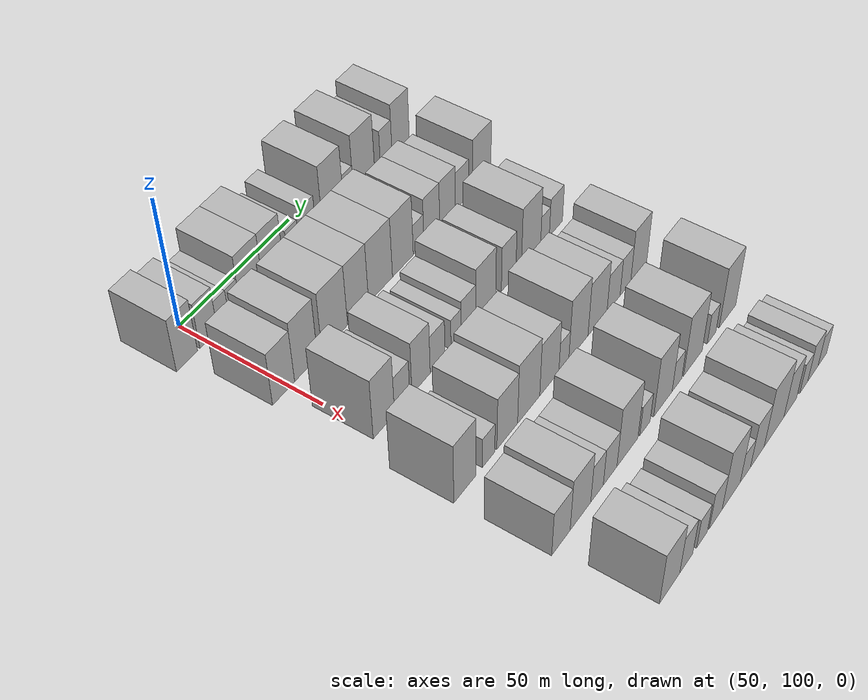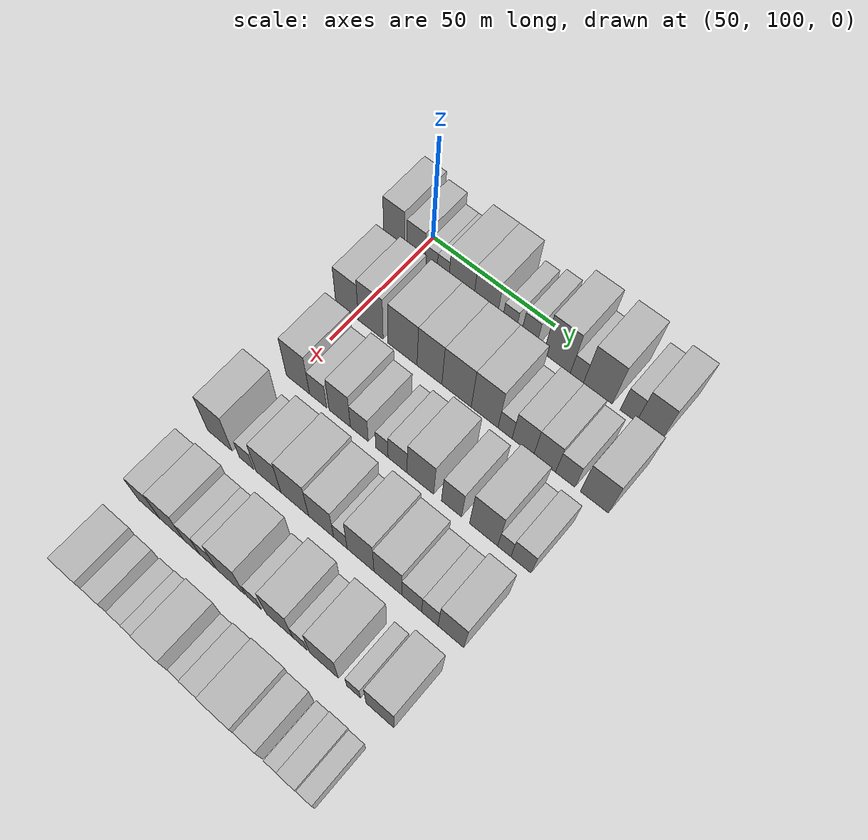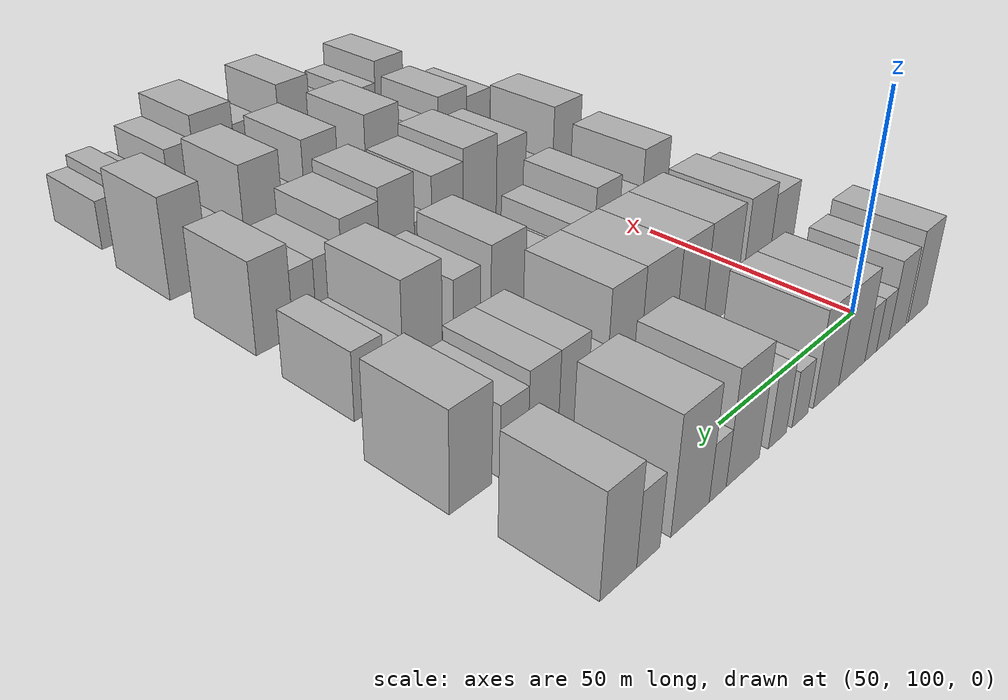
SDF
<sdf version="1.6">
 <world name="default">
  <model name="building_70">
   <static>1</static>
   <pose>50.0000 91.5076 0 0.000000 0.000000 0.000000</pose>
   <link name="link">
    <pose>0 0 10.50 0 0 0</pose>
    <collision name="collision"><geometry><box><size>20.0000 8.9387 21.0000</size></box></geometry></collision>
    <visual name="visual">
     <cast_shadows>0</cast_shadows>
     <geometry><box><size>20.0000 8.9387 21.0000</size></box></geometry>
     <material>
      <script>
       <uri>model://HANNAS_wall/materials/scripts</uri>
       <uri>model://HANNAS_wall/materials/textures</uri>
       <name>vrc/HANNAS_wall</name>
      </script>
     </material>
    </visual>
   </link>
  </model>
  <model name="building_71">
   <static>1</static>
   <pose>50.0000 100.8056 0 0.000000 0.000000 0.000000</pose>
   <link name="link">
    <pose>0 0 9.00 0 0 0</pose>
    <collision name="collision"><geometry><box><size>20.0000 7.6572 18.0000</size></box></geometry></collision>
    <visual name="visual">
     <cast_shadows>0</cast_shadows>
     <geometry><box><size>20.0000 7.6572 18.0000</size></box></geometry>
     <material>
      <script>
       <uri>model://HANNAS_wall/materials/scripts</uri>
       <uri>model://HANNAS_wall/materials/textures</uri>
       <name>vrc/HANNAS_wall</name>
      </script>
     </material>
    </visual>
   </link>
  </model>
  <model name="building_72">
   <static>1</static>
   <pose>50.0000 107.2150 0 0.000000 0.000000 0.000000</pose>
   <link name="link">
    <pose>0 0 6.00 0 0 0</pose>
    <collision name="collision"><geometry><box><size>20.0000 5.1616 12.0000</size></box></geometry></collision>
    <visual name="visual">
     <cast_shadows>0</cast_shadows>
     <geometry><box><size>20.0000 5.1616 12.0000</size></box></geometry>
     <material>
      <script>
       <uri>model://HANNAS_wall/materials/scripts</uri>
       <uri>model://HANNAS_wall/materials/textures</uri>
       <name>vrc/HANNAS_wall</name>
      </script>
     </material>
    </visual>
   </link>
  </model>
  <model name="building_73">
   <static>1</static>
   <pose>50.0000 112.2318 0 0.000000 0.000000 0.000000</pose>
   <link name="link">
    <pose>0 0 6.00 0 0 0</pose>
    <collision name="collision"><geometry><box><size>20.0000 4.8722 12.0000</size></box></geometry></collision>
    <visual name="visual">
     <cast_shadows>0</cast_shadows>
     <geometry><box><size>20.0000 4.8722 12.0000</size></box></geometry>
     <material>
      <script>
       <uri>model://HANNAS_wall/materials/scripts</uri>
       <uri>model://HANNAS_wall/materials/textures</uri>
       <name>vrc/HANNAS_wall</name>
      </script>
     </material>
    </visual>
   </link>
  </model>
  <model name="building_74">
   <static>1</static>
   <pose>50.0000 119.8154 0 0.000000 0.000000 0.000000</pose>
   <link name="link">
    <pose>0 0 10.50 0 0 0</pose>
    <collision name="collision"><geometry><box><size>20.0000 10.2951 21.0000</size></box></geometry></collision>
    <visual name="visual">
     <cast_shadows>0</cast_shadows>
     <geometry><box><size>20.0000 10.2951 21.0000</size></box></geometry>
     <material>
      <script>
       <uri>model://HANNAS_wall/materials/scripts</uri>
       <uri>model://HANNAS_wall/materials/textures</uri>
       <name>vrc/HANNAS_wall</name>
      </script>
     </material>
    </visual>
   </link>
  </model>
  <model name="building_75">
   <static>1</static>
   <pose>50.0000 129.7580 0 0.000000 0.000000 0.000000</pose>
   <link name="link">
    <pose>0 0 10.50 0 0 0</pose>
    <collision name="collision"><geometry><box><size>20.0000 9.5900 21.0000</size></box></geometry></collision>
    <visual name="visual">
     <cast_shadows>0</cast_shadows>
     <geometry><box><size>20.0000 9.5900 21.0000</size></box></geometry>
     <material>
      <script>
       <uri>model://HANNAS_wall/materials/scripts</uri>
       <uri>model://HANNAS_wall/materials/textures</uri>
       <name>vrc/HANNAS_wall</name>
      </script>
     </material>
    </visual>
   </link>
  </model>
  <model name="building_76">
   <static>1</static>
   <pose>50.0000 139.3442 0 0.000000 0.000000 0.000000</pose>
   <link name="link">
    <pose>0 0 6.00 0 0 0</pose>
    <collision name="collision"><geometry><box><size>20.0000 5.5825 12.0000</size></box></geometry></collision>
    <visual name="visual">
     <cast_shadows>0</cast_shadows>
     <geometry><box><size>20.0000 5.5825 12.0000</size></box></geometry>
     <material>
      <script>
       <uri>model://HANNAS_wall/materials/scripts</uri>
       <uri>model://HANNAS_wall/materials/textures</uri>
       <name>vrc/HANNAS_wall</name>
      </script>
     </material>
    </visual>
   </link>
  </model>
  <model name="building_77">
   <static>1</static>
   <pose>50.0000 147.1657 0 0.000000 0.000000 0.000000</pose>
   <link name="link">
    <pose>0 0 7.50 0 0 0</pose>
    <collision name="collision"><geometry><box><size>20.0000 6.0605 15.0000</size></box></geometry></collision>
    <visual name="visual">
     <cast_shadows>0</cast_shadows>
     <geometry><box><size>20.0000 6.0605 15.0000</size></box></geometry>
     <material>
      <script>
       <uri>model://HANNAS_wall/materials/scripts</uri>
       <uri>model://HANNAS_wall/materials/textures</uri>
       <name>vrc/HANNAS_wall</name>
      </script>
     </material>
    </visual>
   </link>
  </model>
  <model name="building_78">
   <static>1</static>
   <pose>50.0000 158.4387 0 0.000000 0.000000 0.000000</pose>
   <link name="link">
    <pose>0 0 12.00 0 0 0</pose>
    <collision name="collision"><geometry><box><size>20.0000 10.4854 24.0000</size></box></geometry></collision>
    <visual name="visual">
     <cast_shadows>0</cast_shadows>
     <geometry><box><size>20.0000 10.4854 24.0000</size></box></geometry>
     <material>
      <script>
       <uri>model://HANNAS_wall/materials/scripts</uri>
       <uri>model://HANNAS_wall/materials/textures</uri>
       <name>vrc/HANNAS_wall</name>
      </script>
     </material>
    </visual>
   </link>
  </model>
  <model name="building_79">
   <static>1</static>
   <pose>50.0000 166.2227 0 0.000000 0.000000 0.000000</pose>
   <link name="link">
    <pose>0 0 6.00 0 0 0</pose>
    <collision name="collision"><geometry><box><size>20.0000 5.0828 12.0000</size></box></geometry></collision>
    <visual name="visual">
     <cast_shadows>0</cast_shadows>
     <geometry><box><size>20.0000 5.0828 12.0000</size></box></geometry>
     <material>
      <script>
       <uri>model://HANNAS_wall/materials/scripts</uri>
       <uri>model://HANNAS_wall/materials/textures</uri>
       <name>vrc/HANNAS_wall</name>
      </script>
     </material>
    </visual>
   </link>
  </model>
  <model name="building_80">
   <static>1</static>
   <pose>50.0000 174.2226 0 0.000000 0.000000 0.000000</pose>
   <link name="link">
    <pose>0 0 12.00 0 0 0</pose>
    <collision name="collision"><geometry><box><size>20.0000 10.9170 24.0000</size></box></geometry></collision>
    <visual name="visual">
     <cast_shadows>0</cast_shadows>
     <geometry><box><size>20.0000 10.9170 24.0000</size></box></geometry>
     <material>
      <script>
       <uri>model://HANNAS_wall/materials/scripts</uri>
       <uri>model://HANNAS_wall/materials/textures</uri>
       <name>vrc/HANNAS_wall</name>
      </script>
     </material>
    </visual>
   </link>
  </model>
  <model name="building_81">
   <static>1</static>
   <pose>50.0000 185.7326 0 0.000000 0.000000 0.000000</pose>
   <link name="link">
    <pose>0 0 7.50 0 0 0</pose>
    <collision name="collision"><geometry><box><size>20.0000 6.1030 15.0000</size></box></geometry></collision>
    <visual name="visual">
     <cast_shadows>0</cast_shadows>
     <geometry><box><size>20.0000 6.1030 15.0000</size></box></geometry>
     <material>
      <script>
       <uri>model://HANNAS_wall/materials/scripts</uri>
       <uri>model://HANNAS_wall/materials/textures</uri>
       <name>vrc/HANNAS_wall</name>
      </script>
     </material>
    </visual>
   </link>
  </model>
  <model name="building_82">
   <static>1</static>
   <pose>50.0000 193.3890 0 0.000000 0.000000 0.000000</pose>
   <link name="link">
    <pose>0 0 10.50 0 0 0</pose>
    <collision name="collision"><geometry><box><size>20.0000 9.2098 21.0000</size></box></geometry></collision>
    <visual name="visual">
     <cast_shadows>0</cast_shadows>
     <geometry><box><size>20.0000 9.2098 21.0000</size></box></geometry>
     <material>
      <script>
       <uri>model://HANNAS_wall/materials/scripts</uri>
       <uri>model://HANNAS_wall/materials/textures</uri>
       <name>vrc/HANNAS_wall</name>
      </script>
     </material>
    </visual>
   </link>
  </model>
  <model name="building_188">
   <static>1</static>
   <pose>79.0000 97.0921 0 0.000000 0.000000 0.000000</pose>
   <link name="link">
    <pose>0 0 10.50 0 0 0</pose>
    <collision name="collision"><geometry><box><size>20.0000 9.6745 21.0000</size></box></geometry></collision>
    <visual name="visual">
     <cast_shadows>0</cast_shadows>
     <geometry><box><size>20.0000 9.6745 21.0000</size></box></geometry>
     <material>
      <script>
       <uri>model://HANNAS_wall/materials/scripts</uri>
       <uri>model://HANNAS_wall/materials/textures</uri>
       <name>vrc/HANNAS_wall</name>
      </script>
     </material>
    </visual>
   </link>
  </model>
  <model name="building_189">
   <static>1</static>
   <pose>79.0000 107.0796 0 0.000000 0.000000 0.000000</pose>
   <link name="link">
    <pose>0 0 12.00 0 0 0</pose>
    <collision name="collision"><geometry><box><size>20.0000 10.3005 24.0000</size></box></geometry></collision>
    <visual name="visual">
     <cast_shadows>0</cast_shadows>
     <geometry><box><size>20.0000 10.3005 24.0000</size></box></geometry>
     <material>
      <script>
       <uri>model://HANNAS_wall/materials/scripts</uri>
       <uri>model://HANNAS_wall/materials/textures</uri>
       <name>vrc/HANNAS_wall</name>
      </script>
     </material>
    </visual>
   </link>
  </model>
  <model name="building_190">
   <static>1</static>
   <pose>79.0000 120.1945 0 0.000000 0.000000 0.000000</pose>
   <link name="link">
    <pose>0 0 12.00 0 0 0</pose>
    <collision name="collision"><geometry><box><size>20.0000 11.9294 24.0000</size></box></geometry></collision>
    <visual name="visual">
     <cast_shadows>0</cast_shadows>
     <geometry><box><size>20.0000 11.9294 24.0000</size></box></geometry>
     <material>
      <script>
       <uri>model://HANNAS_wall/materials/scripts</uri>
       <uri>model://HANNAS_wall/materials/textures</uri>
       <name>vrc/HANNAS_wall</name>
      </script>
     </material>
    </visual>
   </link>
  </model>
  <model name="building_191">
   <static>1</static>
   <pose>79.0000 131.1696 0 0.000000 0.000000 0.000000</pose>
   <link name="link">
    <pose>0 0 12.00 0 0 0</pose>
    <collision name="collision"><geometry><box><size>20.0000 10.0206 24.0000</size></box></geometry></collision>
    <visual name="visual">
     <cast_shadows>0</cast_shadows>
     <geometry><box><size>20.0000 10.0206 24.0000</size></box></geometry>
     <material>
      <script>
       <uri>model://HANNAS_wall/materials/scripts</uri>
       <uri>model://HANNAS_wall/materials/textures</uri>
       <name>vrc/HANNAS_wall</name>
      </script>
     </material>
    </visual>
   </link>
  </model>
  <model name="building_192">
   <static>1</static>
   <pose>79.0000 142.0238 0 0.000000 0.000000 0.000000</pose>
   <link name="link">
    <pose>0 0 12.00 0 0 0</pose>
    <collision name="collision"><geometry><box><size>20.0000 11.6878 24.0000</size></box></geometry></collision>
    <visual name="visual">
     <cast_shadows>0</cast_shadows>
     <geometry><box><size>20.0000 11.6878 24.0000</size></box></geometry>
     <material>
      <script>
       <uri>model://HANNAS_wall/materials/scripts</uri>
       <uri>model://HANNAS_wall/materials/textures</uri>
       <name>vrc/HANNAS_wall</name>
      </script>
     </material>
    </visual>
   </link>
  </model>
  <model name="building_193">
   <static>1</static>
   <pose>79.0000 153.0852 0 0.000000 0.000000 0.000000</pose>
   <link name="link">
    <pose>0 0 12.00 0 0 0</pose>
    <collision name="collision"><geometry><box><size>20.0000 10.4351 24.0000</size></box></geometry></collision>
    <visual name="visual">
     <cast_shadows>0</cast_shadows>
     <geometry><box><size>20.0000 10.4351 24.0000</size></box></geometry>
     <material>
      <script>
       <uri>model://HANNAS_wall/materials/scripts</uri>
       <uri>model://HANNAS_wall/materials/textures</uri>
       <name>vrc/HANNAS_wall</name>
      </script>
     </material>
    </visual>
   </link>
  </model>
  <model name="building_194">
   <static>1</static>
   <pose>79.0000 161.0209 0 0.000000 0.000000 0.000000</pose>
   <link name="link">
    <pose>0 0 6.00 0 0 0</pose>
    <collision name="collision"><geometry><box><size>20.0000 5.4362 12.0000</size></box></geometry></collision>
    <visual name="visual">
     <cast_shadows>0</cast_shadows>
     <geometry><box><size>20.0000 5.4362 12.0000</size></box></geometry>
     <material>
      <script>
       <uri>model://HANNAS_wall/materials/scripts</uri>
       <uri>model://HANNAS_wall/materials/textures</uri>
       <name>vrc/HANNAS_wall</name>
      </script>
     </material>
    </visual>
   </link>
  </model>
  <model name="building_195">
   <static>1</static>
   <pose>79.0000 167.8455 0 0.000000 0.000000 0.000000</pose>
   <link name="link">
    <pose>0 0 9.00 0 0 0</pose>
    <collision name="collision"><geometry><box><size>20.0000 8.2130 18.0000</size></box></geometry></collision>
    <visual name="visual">
     <cast_shadows>0</cast_shadows>
     <geometry><box><size>20.0000 8.2130 18.0000</size></box></geometry>
     <material>
      <script>
       <uri>model://HANNAS_wall/materials/scripts</uri>
       <uri>model://HANNAS_wall/materials/textures</uri>
       <name>vrc/HANNAS_wall</name>
      </script>
     </material>
    </visual>
   </link>
  </model>
  <model name="building_196">
   <static>1</static>
   <pose>79.0000 176.0770 0 0.000000 0.000000 0.000000</pose>
   <link name="link">
    <pose>0 0 9.00 0 0 0</pose>
    <collision name="collision"><geometry><box><size>20.0000 8.2501 18.0000</size></box></geometry></collision>
    <visual name="visual">
     <cast_shadows>0</cast_shadows>
     <geometry><box><size>20.0000 8.2501 18.0000</size></box></geometry>
     <material>
      <script>
       <uri>model://HANNAS_wall/materials/scripts</uri>
       <uri>model://HANNAS_wall/materials/textures</uri>
       <name>vrc/HANNAS_wall</name>
      </script>
     </material>
    </visual>
   </link>
  </model>
  <model name="building_197">
   <static>1</static>
   <pose>79.0000 183.8074 0 0.000000 0.000000 0.000000</pose>
   <link name="link">
    <pose>0 0 7.50 0 0 0</pose>
    <collision name="collision"><geometry><box><size>20.0000 7.2105 15.0000</size></box></geometry></collision>
    <visual name="visual">
     <cast_shadows>0</cast_shadows>
     <geometry><box><size>20.0000 7.2105 15.0000</size></box></geometry>
     <material>
      <script>
       <uri>model://HANNAS_wall/materials/scripts</uri>
       <uri>model://HANNAS_wall/materials/textures</uri>
       <name>vrc/HANNAS_wall</name>
      </script>
     </material>
    </visual>
   </link>
  </model>
  <model name="building_198">
   <static>1</static>
   <pose>79.0000 194.5305 0 0.000000 0.000000 0.000000</pose>
   <link name="link">
    <pose>0 0 10.50 0 0 0</pose>
    <collision name="collision"><geometry><box><size>20.0000 10.2357 21.0000</size></box></geometry></collision>
    <visual name="visual">
     <cast_shadows>0</cast_shadows>
     <geometry><box><size>20.0000 10.2357 21.0000</size></box></geometry>
     <material>
      <script>
       <uri>model://HANNAS_wall/materials/scripts</uri>
       <uri>model://HANNAS_wall/materials/textures</uri>
       <name>vrc/HANNAS_wall</name>
      </script>
     </material>
    </visual>
   </link>
  </model>
  <model name="building_300">
   <static>1</static>
   <pose>108.0000 102.8198 0 0.000000 0.000000 0.000000</pose>
   <link name="link">
    <pose>0 0 12.00 0 0 0</pose>
    <collision name="collision"><geometry><box><size>20.0000 9.7323 24.0000</size></box></geometry></collision>
    <visual name="visual">
     <cast_shadows>0</cast_shadows>
     <geometry><box><size>20.0000 9.7323 24.0000</size></box></geometry>
     <material>
      <script>
       <uri>model://HANNAS_wall/materials/scripts</uri>
       <uri>model://HANNAS_wall/materials/textures</uri>
       <name>vrc/HANNAS_wall</name>
      </script>
     </material>
    </visual>
   </link>
  </model>
  <model name="building_301">
   <static>1</static>
   <pose>108.0000 111.2483 0 0.000000 0.000000 0.000000</pose>
   <link name="link">
    <pose>0 0 7.50 0 0 0</pose>
    <collision name="collision"><geometry><box><size>20.0000 7.1246 15.0000</size></box></geometry></collision>
    <visual name="visual">
     <cast_shadows>0</cast_shadows>
     <geometry><box><size>20.0000 7.1246 15.0000</size></box></geometry>
     <material>
      <script>
       <uri>model://HANNAS_wall/materials/scripts</uri>
       <uri>model://HANNAS_wall/materials/textures</uri>
       <name>vrc/HANNAS_wall</name>
      </script>
     </material>
    </visual>
   </link>
  </model>
  <model name="building_302">
   <static>1</static>
   <pose>108.0000 120.1578 0 0.000000 0.000000 0.000000</pose>
   <link name="link">
    <pose>0 0 10.50 0 0 0</pose>
    <collision name="collision"><geometry><box><size>20.0000 8.6944 21.0000</size></box></geometry></collision>
    <visual name="visual">
     <cast_shadows>0</cast_shadows>
     <geometry><box><size>20.0000 8.6944 21.0000</size></box></geometry>
     <material>
      <script>
       <uri>model://HANNAS_wall/materials/scripts</uri>
       <uri>model://HANNAS_wall/materials/textures</uri>
       <name>vrc/HANNAS_wall</name>
      </script>
     </material>
    </visual>
   </link>
  </model>
  <model name="building_303">
   <static>1</static>
   <pose>108.0000 128.0926 0 0.000000 0.000000 0.000000</pose>
   <link name="link">
    <pose>0 0 7.50 0 0 0</pose>
    <collision name="collision"><geometry><box><size>20.0000 7.1752 15.0000</size></box></geometry></collision>
    <visual name="visual">
     <cast_shadows>0</cast_shadows>
     <geometry><box><size>20.0000 7.1752 15.0000</size></box></geometry>
     <material>
      <script>
       <uri>model://HANNAS_wall/materials/scripts</uri>
       <uri>model://HANNAS_wall/materials/textures</uri>
       <name>vrc/HANNAS_wall</name>
      </script>
     </material>
    </visual>
   </link>
  </model>
  <model name="building_304">
   <static>1</static>
   <pose>108.0000 137.1289 0 0.000000 0.000000 0.000000</pose>
   <link name="link">
    <pose>0 0 6.00 0 0 0</pose>
    <collision name="collision"><geometry><box><size>20.0000 4.8975 12.0000</size></box></geometry></collision>
    <visual name="visual">
     <cast_shadows>0</cast_shadows>
     <geometry><box><size>20.0000 4.8975 12.0000</size></box></geometry>
     <material>
      <script>
       <uri>model://HANNAS_wall/materials/scripts</uri>
       <uri>model://HANNAS_wall/materials/textures</uri>
       <name>vrc/HANNAS_wall</name>
      </script>
     </material>
    </visual>
   </link>
  </model>
  <model name="building_305">
   <static>1</static>
   <pose>108.0000 143.2789 0 0.000000 0.000000 0.000000</pose>
   <link name="link">
    <pose>0 0 7.50 0 0 0</pose>
    <collision name="collision"><geometry><box><size>20.0000 7.4025 15.0000</size></box></geometry></collision>
    <visual name="visual">
     <cast_shadows>0</cast_shadows>
     <geometry><box><size>20.0000 7.4025 15.0000</size></box></geometry>
     <material>
      <script>
       <uri>model://HANNAS_wall/materials/scripts</uri>
       <uri>model://HANNAS_wall/materials/textures</uri>
       <name>vrc/HANNAS_wall</name>
      </script>
     </material>
    </visual>
   </link>
  </model>
  <model name="building_306">
   <static>1</static>
   <pose>108.0000 152.1557 0 0.000000 0.000000 0.000000</pose>
   <link name="link">
    <pose>0 0 10.50 0 0 0</pose>
    <collision name="collision"><geometry><box><size>20.0000 10.3513 21.0000</size></box></geometry></collision>
    <visual name="visual">
     <cast_shadows>0</cast_shadows>
     <geometry><box><size>20.0000 10.3513 21.0000</size></box></geometry>
     <material>
      <script>
       <uri>model://HANNAS_wall/materials/scripts</uri>
       <uri>model://HANNAS_wall/materials/textures</uri>
       <name>vrc/HANNAS_wall</name>
      </script>
     </material>
    </visual>
   </link>
  </model>
  <model name="building_307">
   <static>1</static>
   <pose>108.0000 164.1572 0 0.000000 0.000000 0.000000</pose>
   <link name="link">
    <pose>0 0 9.00 0 0 0</pose>
    <collision name="collision"><geometry><box><size>20.0000 7.6517 18.0000</size></box></geometry></collision>
    <visual name="visual">
     <cast_shadows>0</cast_shadows>
     <geometry><box><size>20.0000 7.6517 18.0000</size></box></geometry>
     <material>
      <script>
       <uri>model://HANNAS_wall/materials/scripts</uri>
       <uri>model://HANNAS_wall/materials/textures</uri>
       <name>vrc/HANNAS_wall</name>
      </script>
     </material>
    </visual>
   </link>
  </model>
  <model name="building_308">
   <static>1</static>
   <pose>108.0000 176.2204 0 0.000000 0.000000 0.000000</pose>
   <link name="link">
    <pose>0 0 12.00 0 0 0</pose>
    <collision name="collision"><geometry><box><size>20.0000 10.4746 24.0000</size></box></geometry></collision>
    <visual name="visual">
     <cast_shadows>0</cast_shadows>
     <geometry><box><size>20.0000 10.4746 24.0000</size></box></geometry>
     <material>
      <script>
       <uri>model://HANNAS_wall/materials/scripts</uri>
       <uri>model://HANNAS_wall/materials/textures</uri>
       <name>vrc/HANNAS_wall</name>
      </script>
     </material>
    </visual>
   </link>
  </model>
  <model name="building_309">
   <static>1</static>
   <pose>108.0000 183.9004 0 0.000000 0.000000 0.000000</pose>
   <link name="link">
    <pose>0 0 6.00 0 0 0</pose>
    <collision name="collision"><geometry><box><size>20.0000 4.8854 12.0000</size></box></geometry></collision>
    <visual name="visual">
     <cast_shadows>0</cast_shadows>
     <geometry><box><size>20.0000 4.8854 12.0000</size></box></geometry>
     <material>
      <script>
       <uri>model://HANNAS_wall/materials/scripts</uri>
       <uri>model://HANNAS_wall/materials/textures</uri>
       <name>vrc/HANNAS_wall</name>
      </script>
     </material>
    </visual>
   </link>
  </model>
  <model name="building_310">
   <static>1</static>
   <pose>108.0000 190.0256 0 0.000000 0.000000 0.000000</pose>
   <link name="link">
    <pose>0 0 7.50 0 0 0</pose>
    <collision name="collision"><geometry><box><size>20.0000 7.3649 15.0000</size></box></geometry></collision>
    <visual name="visual">
     <cast_shadows>0</cast_shadows>
     <geometry><box><size>20.0000 7.3649 15.0000</size></box></geometry>
     <material>
      <script>
       <uri>model://HANNAS_wall/materials/scripts</uri>
       <uri>model://HANNAS_wall/materials/textures</uri>
       <name>vrc/HANNAS_wall</name>
      </script>
     </material>
    </visual>
   </link>
  </model>
  <model name="building_417">
   <static>1</static>
   <pose>137.0000 97.8282 0 0.000000 0.000000 0.000000</pose>
   <link name="link">
    <pose>0 0 12.00 0 0 0</pose>
    <collision name="collision"><geometry><box><size>20.0000 10.3185 24.0000</size></box></geometry></collision>
    <visual name="visual">
     <cast_shadows>0</cast_shadows>
     <geometry><box><size>20.0000 10.3185 24.0000</size></box></geometry>
     <material>
      <script>
       <uri>model://HANNAS_wall/materials/scripts</uri>
       <uri>model://HANNAS_wall/materials/textures</uri>
       <name>vrc/HANNAS_wall</name>
      </script>
     </material>
    </visual>
   </link>
  </model>
  <model name="building_418">
   <static>1</static>
   <pose>137.0000 108.9460 0 0.000000 0.000000 0.000000</pose>
   <link name="link">
    <pose>0 0 6.00 0 0 0</pose>
    <collision name="collision"><geometry><box><size>20.0000 5.9172 12.0000</size></box></geometry></collision>
    <visual name="visual">
     <cast_shadows>0</cast_shadows>
     <geometry><box><size>20.0000 5.9172 12.0000</size></box></geometry>
     <material>
      <script>
       <uri>model://HANNAS_wall/materials/scripts</uri>
       <uri>model://HANNAS_wall/materials/textures</uri>
       <name>vrc/HANNAS_wall</name>
      </script>
     </material>
    </visual>
   </link>
  </model>
  <model name="building_419">
   <static>1</static>
   <pose>137.0000 117.9762 0 0.000000 0.000000 0.000000</pose>
   <link name="link">
    <pose>0 0 10.50 0 0 0</pose>
    <collision name="collision"><geometry><box><size>20.0000 10.1431 21.0000</size></box></geometry></collision>
    <visual name="visual">
     <cast_shadows>0</cast_shadows>
     <geometry><box><size>20.0000 10.1431 21.0000</size></box></geometry>
     <material>
      <script>
       <uri>model://HANNAS_wall/materials/scripts</uri>
       <uri>model://HANNAS_wall/materials/textures</uri>
       <name>vrc/HANNAS_wall</name>
      </script>
     </material>
    </visual>
   </link>
  </model>
  <model name="building_420">
   <static>1</static>
   <pose>137.0000 128.6121 0 0.000000 0.000000 0.000000</pose>
   <link name="link">
    <pose>0 0 12.00 0 0 0</pose>
    <collision name="collision"><geometry><box><size>20.0000 11.1288 24.0000</size></box></geometry></collision>
    <visual name="visual">
     <cast_shadows>0</cast_shadows>
     <geometry><box><size>20.0000 11.1288 24.0000</size></box></geometry>
     <material>
      <script>
       <uri>model://HANNAS_wall/materials/scripts</uri>
       <uri>model://HANNAS_wall/materials/textures</uri>
       <name>vrc/HANNAS_wall</name>
      </script>
     </material>
    </visual>
   </link>
  </model>
  <model name="building_421">
   <static>1</static>
   <pose>137.0000 139.1067 0 0.000000 0.000000 0.000000</pose>
   <link name="link">
    <pose>0 0 10.50 0 0 0</pose>
    <collision name="collision"><geometry><box><size>20.0000 9.8602 21.0000</size></box></geometry></collision>
    <visual name="visual">
     <cast_shadows>0</cast_shadows>
     <geometry><box><size>20.0000 9.8602 21.0000</size></box></geometry>
     <material>
      <script>
       <uri>model://HANNAS_wall/materials/scripts</uri>
       <uri>model://HANNAS_wall/materials/textures</uri>
       <name>vrc/HANNAS_wall</name>
      </script>
     </material>
    </visual>
   </link>
  </model>
  <model name="building_422">
   <static>1</static>
   <pose>137.0000 146.6534 0 0.000000 0.000000 0.000000</pose>
   <link name="link">
    <pose>0 0 6.00 0 0 0</pose>
    <collision name="collision"><geometry><box><size>20.0000 5.2334 12.0000</size></box></geometry></collision>
    <visual name="visual">
     <cast_shadows>0</cast_shadows>
     <geometry><box><size>20.0000 5.2334 12.0000</size></box></geometry>
     <material>
      <script>
       <uri>model://HANNAS_wall/materials/scripts</uri>
       <uri>model://HANNAS_wall/materials/textures</uri>
       <name>vrc/HANNAS_wall</name>
      </script>
     </material>
    </visual>
   </link>
  </model>
  <model name="building_423">
   <static>1</static>
   <pose>137.0000 154.4132 0 0.000000 0.000000 0.000000</pose>
   <link name="link">
    <pose>0 0 12.00 0 0 0</pose>
    <collision name="collision"><geometry><box><size>20.0000 10.2862 24.0000</size></box></geometry></collision>
    <visual name="visual">
     <cast_shadows>0</cast_shadows>
     <geometry><box><size>20.0000 10.2862 24.0000</size></box></geometry>
     <material>
      <script>
       <uri>model://HANNAS_wall/materials/scripts</uri>
       <uri>model://HANNAS_wall/materials/textures</uri>
       <name>vrc/HANNAS_wall</name>
      </script>
     </material>
    </visual>
   </link>
  </model>
  <model name="building_424">
   <static>1</static>
   <pose>137.0000 164.7771 0 0.000000 0.000000 0.000000</pose>
   <link name="link">
    <pose>0 0 10.50 0 0 0</pose>
    <collision name="collision"><geometry><box><size>20.0000 10.4415 21.0000</size></box></geometry></collision>
    <visual name="visual">
     <cast_shadows>0</cast_shadows>
     <geometry><box><size>20.0000 10.4415 21.0000</size></box></geometry>
     <material>
      <script>
       <uri>model://HANNAS_wall/materials/scripts</uri>
       <uri>model://HANNAS_wall/materials/textures</uri>
       <name>vrc/HANNAS_wall</name>
      </script>
     </material>
    </visual>
   </link>
  </model>
  <model name="building_425">
   <static>1</static>
   <pose>137.0000 173.6794 0 0.000000 0.000000 0.000000</pose>
   <link name="link">
    <pose>0 0 7.50 0 0 0</pose>
    <collision name="collision"><geometry><box><size>20.0000 7.3630 15.0000</size></box></geometry></collision>
    <visual name="visual">
     <cast_shadows>0</cast_shadows>
     <geometry><box><size>20.0000 7.3630 15.0000</size></box></geometry>
     <material>
      <script>
       <uri>model://HANNAS_wall/materials/scripts</uri>
       <uri>model://HANNAS_wall/materials/textures</uri>
       <name>vrc/HANNAS_wall</name>
      </script>
     </material>
    </visual>
   </link>
  </model>
  <model name="building_426">
   <static>1</static>
   <pose>137.0000 180.3891 0 0.000000 0.000000 0.000000</pose>
   <link name="link">
    <pose>0 0 7.50 0 0 0</pose>
    <collision name="collision"><geometry><box><size>20.0000 6.0564 15.0000</size></box></geometry></collision>
    <visual name="visual">
     <cast_shadows>0</cast_shadows>
     <geometry><box><size>20.0000 6.0564 15.0000</size></box></geometry>
     <material>
      <script>
       <uri>model://HANNAS_wall/materials/scripts</uri>
       <uri>model://HANNAS_wall/materials/textures</uri>
       <name>vrc/HANNAS_wall</name>
      </script>
     </material>
    </visual>
   </link>
  </model>
  <model name="building_427">
   <static>1</static>
   <pose>137.0000 188.0786 0 0.000000 0.000000 0.000000</pose>
   <link name="link">
    <pose>0 0 10.50 0 0 0</pose>
    <collision name="collision"><geometry><box><size>20.0000 9.3226 21.0000</size></box></geometry></collision>
    <visual name="visual">
     <cast_shadows>0</cast_shadows>
     <geometry><box><size>20.0000 9.3226 21.0000</size></box></geometry>
     <material>
      <script>
       <uri>model://HANNAS_wall/materials/scripts</uri>
       <uri>model://HANNAS_wall/materials/textures</uri>
       <name>vrc/HANNAS_wall</name>
      </script>
     </material>
    </visual>
   </link>
  </model>
  <model name="building_524">
   <static>1</static>
   <pose>166.0000 97.3955 0 0.000000 0.000000 0.000000</pose>
   <link name="link">
    <pose>0 0 9.00 0 0 0</pose>
    <collision name="collision"><geometry><box><size>20.0000 8.8610 18.0000</size></box></geometry></collision>
    <visual name="visual">
     <cast_shadows>0</cast_shadows>
     <geometry><box><size>20.0000 8.8610 18.0000</size></box></geometry>
     <material>
      <script>
       <uri>model://HANNAS_wall/materials/scripts</uri>
       <uri>model://HANNAS_wall/materials/textures</uri>
       <name>vrc/HANNAS_wall</name>
      </script>
     </material>
    </visual>
   </link>
  </model>
  <model name="building_525">
   <static>1</static>
   <pose>166.0000 106.9008 0 0.000000 0.000000 0.000000</pose>
   <link name="link">
    <pose>0 0 10.50 0 0 0</pose>
    <collision name="collision"><geometry><box><size>20.0000 10.1497 21.0000</size></box></geometry></collision>
    <visual name="visual">
     <cast_shadows>0</cast_shadows>
     <geometry><box><size>20.0000 10.1497 21.0000</size></box></geometry>
     <material>
      <script>
       <uri>model://HANNAS_wall/materials/scripts</uri>
       <uri>model://HANNAS_wall/materials/textures</uri>
       <name>vrc/HANNAS_wall</name>
      </script>
     </material>
    </visual>
   </link>
  </model>
  <model name="building_526">
   <static>1</static>
   <pose>166.0000 115.1401 0 0.000000 0.000000 0.000000</pose>
   <link name="link">
    <pose>0 0 7.50 0 0 0</pose>
    <collision name="collision"><geometry><box><size>20.0000 6.3288 15.0000</size></box></geometry></collision>
    <visual name="visual">
     <cast_shadows>0</cast_shadows>
     <geometry><box><size>20.0000 6.3288 15.0000</size></box></geometry>
     <material>
      <script>
       <uri>model://HANNAS_wall/materials/scripts</uri>
       <uri>model://HANNAS_wall/materials/textures</uri>
       <name>vrc/HANNAS_wall</name>
      </script>
     </material>
    </visual>
   </link>
  </model>
  <model name="building_527">
   <static>1</static>
   <pose>166.0000 121.8088 0 0.000000 0.000000 0.000000</pose>
   <link name="link">
    <pose>0 0 7.50 0 0 0</pose>
    <collision name="collision"><geometry><box><size>20.0000 7.0087 15.0000</size></box></geometry></collision>
    <visual name="visual">
     <cast_shadows>0</cast_shadows>
     <geometry><box><size>20.0000 7.0087 15.0000</size></box></geometry>
     <material>
      <script>
       <uri>model://HANNAS_wall/materials/scripts</uri>
       <uri>model://HANNAS_wall/materials/textures</uri>
       <name>vrc/HANNAS_wall</name>
      </script>
     </material>
    </visual>
   </link>
  </model>
  <model name="building_528">
   <static>1</static>
   <pose>166.0000 130.8202 0 0.000000 0.000000 0.000000</pose>
   <link name="link">
    <pose>0 0 12.00 0 0 0</pose>
    <collision name="collision"><geometry><box><size>20.0000 11.0142 24.0000</size></box></geometry></collision>
    <visual name="visual">
     <cast_shadows>0</cast_shadows>
     <geometry><box><size>20.0000 11.0142 24.0000</size></box></geometry>
     <material>
      <script>
       <uri>model://HANNAS_wall/materials/scripts</uri>
       <uri>model://HANNAS_wall/materials/textures</uri>
       <name>vrc/HANNAS_wall</name>
      </script>
     </material>
    </visual>
   </link>
  </model>
  <model name="building_529">
   <static>1</static>
   <pose>166.0000 140.0978 0 0.000000 0.000000 0.000000</pose>
   <link name="link">
    <pose>0 0 6.00 0 0 0</pose>
    <collision name="collision"><geometry><box><size>20.0000 5.5410 12.0000</size></box></geometry></collision>
    <visual name="visual">
     <cast_shadows>0</cast_shadows>
     <geometry><box><size>20.0000 5.5410 12.0000</size></box></geometry>
     <material>
      <script>
       <uri>model://HANNAS_wall/materials/scripts</uri>
       <uri>model://HANNAS_wall/materials/textures</uri>
       <name>vrc/HANNAS_wall</name>
      </script>
     </material>
    </visual>
   </link>
  </model>
  <model name="building_530">
   <static>1</static>
   <pose>166.0000 149.9389 0 0.000000 0.000000 0.000000</pose>
   <link name="link">
    <pose>0 0 12.00 0 0 0</pose>
    <collision name="collision"><geometry><box><size>20.0000 10.1412 24.0000</size></box></geometry></collision>
    <visual name="visual">
     <cast_shadows>0</cast_shadows>
     <geometry><box><size>20.0000 10.1412 24.0000</size></box></geometry>
     <material>
      <script>
       <uri>model://HANNAS_wall/materials/scripts</uri>
       <uri>model://HANNAS_wall/materials/textures</uri>
       <name>vrc/HANNAS_wall</name>
      </script>
     </material>
    </visual>
   </link>
  </model>
  <model name="building_531">
   <static>1</static>
   <pose>166.0000 157.7311 0 0.000000 0.000000 0.000000</pose>
   <link name="link">
    <pose>0 0 6.00 0 0 0</pose>
    <collision name="collision"><geometry><box><size>20.0000 5.4431 12.0000</size></box></geometry></collision>
    <visual name="visual">
     <cast_shadows>0</cast_shadows>
     <geometry><box><size>20.0000 5.4431 12.0000</size></box></geometry>
     <material>
      <script>
       <uri>model://HANNAS_wall/materials/scripts</uri>
       <uri>model://HANNAS_wall/materials/textures</uri>
       <name>vrc/HANNAS_wall</name>
      </script>
     </material>
    </visual>
   </link>
  </model>
  <model name="building_532">
   <static>1</static>
   <pose>166.0000 166.8174 0 0.000000 0.000000 0.000000</pose>
   <link name="link">
    <pose>0 0 12.00 0 0 0</pose>
    <collision name="collision"><geometry><box><size>20.0000 10.7294 24.0000</size></box></geometry></collision>
    <visual name="visual">
     <cast_shadows>0</cast_shadows>
     <geometry><box><size>20.0000 10.7294 24.0000</size></box></geometry>
     <material>
      <script>
       <uri>model://HANNAS_wall/materials/scripts</uri>
       <uri>model://HANNAS_wall/materials/textures</uri>
       <name>vrc/HANNAS_wall</name>
      </script>
     </material>
    </visual>
   </link>
  </model>
  <model name="building_533">
   <static>1</static>
   <pose>166.0000 177.7111 0 0.000000 0.000000 0.000000</pose>
   <link name="link">
    <pose>0 0 6.00 0 0 0</pose>
    <collision name="collision"><geometry><box><size>20.0000 5.0581 12.0000</size></box></geometry></collision>
    <visual name="visual">
     <cast_shadows>0</cast_shadows>
     <geometry><box><size>20.0000 5.0581 12.0000</size></box></geometry>
     <material>
      <script>
       <uri>model://HANNAS_wall/materials/scripts</uri>
       <uri>model://HANNAS_wall/materials/textures</uri>
       <name>vrc/HANNAS_wall</name>
      </script>
     </material>
    </visual>
   </link>
  </model>
  <model name="building_534">
   <static>1</static>
   <pose>166.0000 187.2567 0 0.000000 0.000000 0.000000</pose>
   <link name="link">
    <pose>0 0 12.00 0 0 0</pose>
    <collision name="collision"><geometry><box><size>20.0000 10.0332 24.0000</size></box></geometry></collision>
    <visual name="visual">
     <cast_shadows>0</cast_shadows>
     <geometry><box><size>20.0000 10.0332 24.0000</size></box></geometry>
     <material>
      <script>
       <uri>model://HANNAS_wall/materials/scripts</uri>
       <uri>model://HANNAS_wall/materials/textures</uri>
       <name>vrc/HANNAS_wall</name>
      </script>
     </material>
    </visual>
   </link>
  </model>
  <model name="building_642">
   <static>1</static>
   <pose>195.0000 100.7479 0 0.000000 0.000000 0.000000</pose>
   <link name="link">
    <pose>0 0 10.50 0 0 0</pose>
    <collision name="collision"><geometry><box><size>20.0000 10.2715 21.0000</size></box></geometry></collision>
    <visual name="visual">
     <cast_shadows>0</cast_shadows>
     <geometry><box><size>20.0000 10.2715 21.0000</size></box></geometry>
     <material>
      <script>
       <uri>model://HANNAS_wall/materials/scripts</uri>
       <uri>model://HANNAS_wall/materials/textures</uri>
       <name>vrc/HANNAS_wall</name>
      </script>
     </material>
    </visual>
   </link>
  </model>
  <model name="building_643">
   <static>1</static>
   <pose>195.0000 109.2676 0 0.000000 0.000000 0.000000</pose>
   <link name="link">
    <pose>0 0 7.50 0 0 0</pose>
    <collision name="collision"><geometry><box><size>20.0000 6.7680 15.0000</size></box></geometry></collision>
    <visual name="visual">
     <cast_shadows>0</cast_shadows>
     <geometry><box><size>20.0000 6.7680 15.0000</size></box></geometry>
     <material>
      <script>
       <uri>model://HANNAS_wall/materials/scripts</uri>
       <uri>model://HANNAS_wall/materials/textures</uri>
       <name>vrc/HANNAS_wall</name>
      </script>
     </material>
    </visual>
   </link>
  </model>
  <model name="building_644">
   <static>1</static>
   <pose>195.0000 117.5141 0 0.000000 0.000000 0.000000</pose>
   <link name="link">
    <pose>0 0 6.00 0 0 0</pose>
    <collision name="collision"><geometry><box><size>20.0000 5.7250 12.0000</size></box></geometry></collision>
    <visual name="visual">
     <cast_shadows>0</cast_shadows>
     <geometry><box><size>20.0000 5.7250 12.0000</size></box></geometry>
     <material>
      <script>
       <uri>model://HANNAS_wall/materials/scripts</uri>
       <uri>model://HANNAS_wall/materials/textures</uri>
       <name>vrc/HANNAS_wall</name>
      </script>
     </material>
    </visual>
   </link>
  </model>
  <model name="building_645">
   <static>1</static>
   <pose>195.0000 124.8648 0 0.000000 0.000000 0.000000</pose>
   <link name="link">
    <pose>0 0 7.50 0 0 0</pose>
    <collision name="collision"><geometry><box><size>20.0000 6.9763 15.0000</size></box></geometry></collision>
    <visual name="visual">
     <cast_shadows>0</cast_shadows>
     <geometry><box><size>20.0000 6.9763 15.0000</size></box></geometry>
     <material>
      <script>
       <uri>model://HANNAS_wall/materials/scripts</uri>
       <uri>model://HANNAS_wall/materials/textures</uri>
       <name>vrc/HANNAS_wall</name>
      </script>
     </material>
    </visual>
   </link>
  </model>
  <model name="building_646">
   <static>1</static>
   <pose>195.0000 133.3260 0 0.000000 0.000000 0.000000</pose>
   <link name="link">
    <pose>0 0 12.00 0 0 0</pose>
    <collision name="collision"><geometry><box><size>20.0000 9.9460 24.0000</size></box></geometry></collision>
    <visual name="visual">
     <cast_shadows>0</cast_shadows>
     <geometry><box><size>20.0000 9.9460 24.0000</size></box></geometry>
     <material>
      <script>
       <uri>model://HANNAS_wall/materials/scripts</uri>
       <uri>model://HANNAS_wall/materials/textures</uri>
       <name>vrc/HANNAS_wall</name>
      </script>
     </material>
    </visual>
   </link>
  </model>
  <model name="building_647">
   <static>1</static>
   <pose>195.0000 141.2262 0 0.000000 0.000000 0.000000</pose>
   <link name="link">
    <pose>0 0 6.00 0 0 0</pose>
    <collision name="collision"><geometry><box><size>20.0000 5.8544 12.0000</size></box></geometry></collision>
    <visual name="visual">
     <cast_shadows>0</cast_shadows>
     <geometry><box><size>20.0000 5.8544 12.0000</size></box></geometry>
     <material>
      <script>
       <uri>model://HANNAS_wall/materials/scripts</uri>
       <uri>model://HANNAS_wall/materials/textures</uri>
       <name>vrc/HANNAS_wall</name>
      </script>
     </material>
    </visual>
   </link>
  </model>
  <model name="building_648">
   <static>1</static>
   <pose>195.0000 148.0794 0 0.000000 0.000000 0.000000</pose>
   <link name="link">
    <pose>0 0 9.00 0 0 0</pose>
    <collision name="collision"><geometry><box><size>20.0000 7.8520 18.0000</size></box></geometry></collision>
    <visual name="visual">
     <cast_shadows>0</cast_shadows>
     <geometry><box><size>20.0000 7.8520 18.0000</size></box></geometry>
     <material>
      <script>
       <uri>model://HANNAS_wall/materials/scripts</uri>
       <uri>model://HANNAS_wall/materials/textures</uri>
       <name>vrc/HANNAS_wall</name>
      </script>
     </material>
    </visual>
   </link>
  </model>
  <model name="building_649">
   <static>1</static>
   <pose>195.0000 157.8161 0 0.000000 0.000000 0.000000</pose>
   <link name="link">
    <pose>0 0 12.00 0 0 0</pose>
    <collision name="collision"><geometry><box><size>20.0000 11.6214 24.0000</size></box></geometry></collision>
    <visual name="visual">
     <cast_shadows>0</cast_shadows>
     <geometry><box><size>20.0000 11.6214 24.0000</size></box></geometry>
     <material>
      <script>
       <uri>model://HANNAS_wall/materials/scripts</uri>
       <uri>model://HANNAS_wall/materials/textures</uri>
       <name>vrc/HANNAS_wall</name>
      </script>
     </material>
    </visual>
   </link>
  </model>
  <model name="building_650">
   <static>1</static>
   <pose>195.0000 167.4634 0 0.000000 0.000000 0.000000</pose>
   <link name="link">
    <pose>0 0 9.00 0 0 0</pose>
    <collision name="collision"><geometry><box><size>20.0000 7.6731 18.0000</size></box></geometry></collision>
    <visual name="visual">
     <cast_shadows>0</cast_shadows>
     <geometry><box><size>20.0000 7.6731 18.0000</size></box></geometry>
     <material>
      <script>
       <uri>model://HANNAS_wall/materials/scripts</uri>
       <uri>model://HANNAS_wall/materials/textures</uri>
       <name>vrc/HANNAS_wall</name>
      </script>
     </material>
    </visual>
   </link>
  </model>
  <model name="building_651">
   <static>1</static>
   <pose>195.0000 175.7583 0 0.000000 0.000000 0.000000</pose>
   <link name="link">
    <pose>0 0 6.00 0 0 0</pose>
    <collision name="collision"><geometry><box><size>20.0000 4.9167 12.0000</size></box></geometry></collision>
    <visual name="visual">
     <cast_shadows>0</cast_shadows>
     <geometry><box><size>20.0000 4.9167 12.0000</size></box></geometry>
     <material>
      <script>
       <uri>model://HANNAS_wall/materials/scripts</uri>
       <uri>model://HANNAS_wall/materials/textures</uri>
       <name>vrc/HANNAS_wall</name>
      </script>
     </material>
    </visual>
   </link>
  </model>
  <model name="building_652">
   <static>1</static>
   <pose>195.0000 181.4297 0 0.000000 0.000000 0.000000</pose>
   <link name="link">
    <pose>0 0 7.50 0 0 0</pose>
    <collision name="collision"><geometry><box><size>20.0000 6.4262 15.0000</size></box></geometry></collision>
    <visual name="visual">
     <cast_shadows>0</cast_shadows>
     <geometry><box><size>20.0000 6.4262 15.0000</size></box></geometry>
     <material>
      <script>
       <uri>model://HANNAS_wall/materials/scripts</uri>
       <uri>model://HANNAS_wall/materials/textures</uri>
       <name>vrc/HANNAS_wall</name>
      </script>
     </material>
    </visual>
   </link>
  </model>
  <model name="building_653">
   <static>1</static>
   <pose>195.0000 187.3841 0 0.000000 0.000000 0.000000</pose>
   <link name="link">
    <pose>0 0 6.00 0 0 0</pose>
    <collision name="collision"><geometry><box><size>20.0000 5.4825 12.0000</size></box></geometry></collision>
    <visual name="visual">
     <cast_shadows>0</cast_shadows>
     <geometry><box><size>20.0000 5.4825 12.0000</size></box></geometry>
     <material>
      <script>
       <uri>model://HANNAS_wall/materials/scripts</uri>
       <uri>model://HANNAS_wall/materials/textures</uri>
       <name>vrc/HANNAS_wall</name>
      </script>
     </material>
    </visual>
   </link>
  </model>
 </world>
</sdf>
